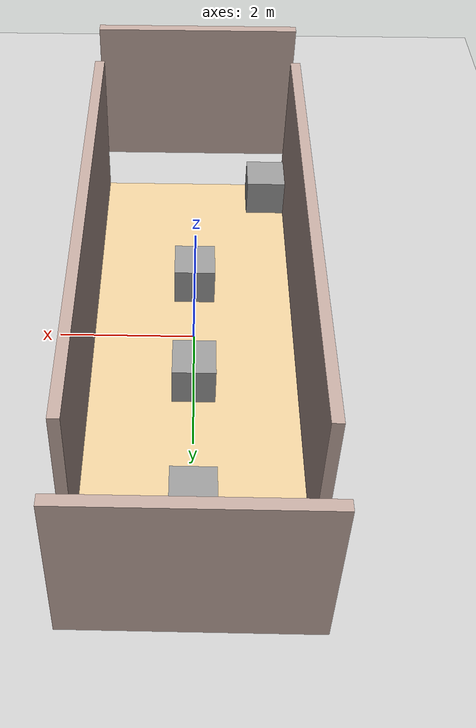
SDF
<sdf version="1.7">
 <world name="default">
  <light name="sun" type="directional">
   <pose>0 0 10 0 -0 0</pose>
   <diffuse>0.8 0.8 0.8 1</diffuse>
   <specular>0.2 0.2 0.2 1</specular>
   <attenuation>
    <range>1000</range>
    <constant>0.9</constant>
    <linear>0.01</linear>
    <quadratic>0.001</quadratic>
   </attenuation>
   <direction>-0.5 0.1 -0.9</direction>
   <spot><inner_angle>0</inner_angle><outer_angle>0</outer_angle><falloff>0</falloff></spot>
  </light>
  <model name="ground_plane">
   <static>1</static>
   <link name="link">
    <collision name="collision">
     <geometry><plane><normal>0 0 1</normal><size>100 100</size></plane></geometry>
     <surface><friction><ode><mu>100</mu><mu2>50</mu2></ode></friction></surface>
    </collision>
    <visual name="visual">
     <cast_shadows>0</cast_shadows>
     <geometry><plane><normal>0 0 1</normal><size>100 100</size></plane></geometry>
     <material>
      <script><uri>file://media/materials/scripts/gazebo.material</uri><name>Gazebo/Grey</name></script>
     </material>
    </visual>
   </link>
  </model>
  <gravity>0 0 -9.8</gravity>
  <magnetic_field>6e-06 2.3e-05 -4.2e-05</magnetic_field>
  <atmosphere type="adiabatic"/>
  <physics type="ode">
   <max_step_size>0.001</max_step_size>
   <real_time_factor>1</real_time_factor>
   <real_time_update_rate>1000</real_time_update_rate>
  </physics>
  <scene><ambient>0.4 0.4 0.4 1</ambient><background>0.7 0.7 0.7 1</background><shadows>1</shadows></scene>
  <audio><device>default</device></audio>
  <spherical_coordinates>
   <surface_model>EARTH_WGS84</surface_model>
   <latitude_deg>0</latitude_deg>
   <longitude_deg>0</longitude_deg>
   <elevation>0</elevation>
   <heading_deg>0</heading_deg>
  </spherical_coordinates>
  <model name="Supermarket_real_walls">
   <link name="Floor_0">
    <collision name="Floor_0_Collision"><geometry><box><size>3.25 7.25 0.1</size></box></geometry></collision>
    <visual name="Floor_0_Visual">
     <geometry><box><size>3.25 7.25 0.1</size></box></geometry>
     <material>
      <script><uri>file://media/materials/scripts/gazebo.material</uri><name>Gazebo/Grey</name></script>
      <ambient>0.921569 0.807843 0.615686 1</ambient>
     </material>
     <meta><layer>0</layer></meta>
    </visual>
   </link>
   <link name="Wall_11">
    <collision name="Wall_11_Collision">
     <geometry><box><size>3.25 0.15 2.5</size></box></geometry>
     <pose>0 0 1.25 0 -0 0</pose>
    </collision>
    <visual name="Wall_11_Visual">
     <pose>0 0 1.25 0 -0 0</pose>
     <geometry><box><size>3.25 0.15 2.5</size></box></geometry>
     <material>
      <script><uri>file://media/materials/scripts/gazebo.material</uri><name>Gazebo/Grey</name></script>
      <ambient>0.760784 0.662745 0.627451 1</ambient>
     </material>
     <meta><layer>0</layer></meta>
    </visual>
    <pose>0 -4.675 0 0 -0 0</pose>
   </link>
   <link name="Wall_12">
    <collision name="Wall_12_Collision">
     <geometry><box><size>7.25 0.15 2.5</size></box></geometry>
     <pose>0 0 1.25 0 -0 0</pose>
    </collision>
    <visual name="Wall_12_Visual">
     <pose>0 0 1.25 0 -0 0</pose>
     <geometry><box><size>7.25 0.15 2.5</size></box></geometry>
     <material>
      <script><uri>file://media/materials/scripts/gazebo.material</uri><name>Gazebo/Grey</name></script>
      <ambient>0.760784 0.662745 0.627451 1</ambient>
     </material>
     <meta><layer>0</layer></meta>
    </visual>
    <pose>1.55 0 0 0 -0 1.5708</pose>
   </link>
   <link name="Wall_18">
    <collision name="Wall_18_Collision">
     <geometry><box><size>7.25 0.15 2.5</size></box></geometry>
     <pose>0 0 1.25 0 -0 0</pose>
    </collision>
    <visual name="Wall_18_Visual">
     <pose>0 0 1.25 0 -0 0</pose>
     <geometry><box><size>7.25 0.15 2.5</size></box></geometry>
     <material>
      <script><uri>file://media/materials/scripts/gazebo.material</uri><name>Gazebo/Grey</name></script>
      <ambient>0.760784 0.662745 0.627451 1</ambient>
     </material>
     <meta><layer>0</layer></meta>
    </visual>
    <pose>-1.55 0 0 0 -0 1.5708</pose>
   </link>
   <link name="Wall_21">
    <collision name="Wall_21_Collision">
     <geometry><box><size>3.23 0.15 2.5</size></box></geometry>
     <pose>0 0 1.25 0 -0 0</pose>
    </collision>
    <visual name="Wall_21_Visual">
     <pose>0 0 1.25 0 -0 0</pose>
     <geometry><box><size>3.23 0.15 2.5</size></box></geometry>
     <material>
      <script><uri>file://media/materials/scripts/gazebo.material</uri><name>Gazebo/Grey</name></script>
      <ambient>0.760784 0.662745 0.627451 1</ambient>
     </material>
     <meta><layer>0</layer></meta>
    </visual>
    <pose>0.01 4.675 0 0 -0 0</pose>
   </link>
   <static>1</static>
  </model>
  <model name="markers_supermarket_real">
   <link name="link">
    <inertial>
     <mass>1</mass>
     <inertia>
      <ixx>0.166667</ixx>
      <ixy>0</ixy>
      <ixz>0</ixz>
      <iyy>0.166667</iyy>
      <iyz>0</iyz>
      <izz>0.166667</izz>
     </inertia>
    </inertial>
    <visual name="visual">
     <geometry><box><size>0.61 0.61 0.61</size></box></geometry>
     <material>
      <script><name>Gazebo/Grey</name><uri>file://media/materials/scripts/gazebo.material</uri></script>
      <shader type="pixel"><normal_map>__default__</normal_map></shader>
      <ambient>0.3 0.3 0.3 1</ambient>
      <diffuse>0.7 0.7 0.7 1</diffuse>
      <specular>0.01 0.01 0.01 1</specular>
      <emissive>0 0 0 1</emissive>
     </material>
    </visual>
    <collision name="collision">
     <geometry><box><size>0.61 0.61 0.61</size></box></geometry>
     <surface>
      <friction>
       <ode><mu>1</mu><mu2>1</mu2><fdir1>0 0 0</fdir1><slip1>0</slip1><slip2>0</slip2></ode>
       <torsional>
        <coefficient>1</coefficient>
        <patch_radius>0</patch_radius>
        <surface_radius>0</surface_radius>
        <use_patch_radius>1</use_patch_radius>
        <ode><slip>0</slip></ode>
       </torsional>
      </friction>
      <bounce><restitution_coefficient>0</restitution_coefficient><threshold>1e+06</threshold></bounce>
      <contact>
       <collide_without_contact>0</collide_without_contact>
       <collide_without_contact_bitmask>1</collide_without_contact_bitmask>
       <collide_bitmask>1</collide_bitmask>
       <ode>
        <soft_cfm>0</soft_cfm>
        <soft_erp>0.2</soft_erp>
        <kp>1e+13</kp>
        <kd>1</kd>
        <max_vel>0.01</max_vel>
        <min_depth>0</min_depth>
       </ode>
       <bullet>
        <split_impulse>1</split_impulse>
        <split_impulse_penetration_threshold>-0.01</split_impulse_penetration_threshold>
        <soft_cfm>0</soft_cfm>
        <soft_erp>0.2</soft_erp>
        <kp>1e+13</kp>
        <kd>1</kd>
       </bullet>
      </contact>
     </surface>
    </collision>
   </link>
   <static>0</static>
   <pose>-4e-06 3.16886 0.354995 -8e-06 -6e-06 -0.002094</pose>
  </model>
  <model name="markers_supermarket_real_0">
   <link name="link">
    <inertial>
     <mass>1</mass>
     <inertia>
      <ixx>0.166667</ixx>
      <ixy>0</ixy>
      <ixz>0</ixz>
      <iyy>0.166667</iyy>
      <iyz>0</iyz>
      <izz>0.166667</izz>
     </inertia>
    </inertial>
    <visual name="visual">
     <geometry><box><size>0.61 0.61 0.61</size></box></geometry>
     <material>
      <script><name>Gazebo/Grey</name><uri>file://media/materials/scripts/gazebo.material</uri></script>
      <shader type="pixel"><normal_map>__default__</normal_map></shader>
      <ambient>0.3 0.3 0.3 1</ambient>
      <diffuse>0.7 0.7 0.7 1</diffuse>
      <specular>0.01 0.01 0.01 1</specular>
      <emissive>0 0 0 1</emissive>
     </material>
    </visual>
    <collision name="collision">
     <geometry><box><size>0.61 0.61 0.61</size></box></geometry>
     <surface>
      <friction>
       <ode><mu>1</mu><mu2>1</mu2><fdir1>0 0 0</fdir1><slip1>0</slip1><slip2>0</slip2></ode>
       <torsional>
        <coefficient>1</coefficient>
        <patch_radius>0</patch_radius>
        <surface_radius>0</surface_radius>
        <use_patch_radius>1</use_patch_radius>
        <ode><slip>0</slip></ode>
       </torsional>
      </friction>
      <bounce><restitution_coefficient>0</restitution_coefficient><threshold>1e+06</threshold></bounce>
      <contact>
       <collide_without_contact>0</collide_without_contact>
       <collide_without_contact_bitmask>1</collide_without_contact_bitmask>
       <collide_bitmask>1</collide_bitmask>
       <ode>
        <soft_cfm>0</soft_cfm>
        <soft_erp>0.2</soft_erp>
        <kp>1e+13</kp>
        <kd>1</kd>
        <max_vel>0.01</max_vel>
        <min_depth>0</min_depth>
       </ode>
       <bullet>
        <split_impulse>1</split_impulse>
        <split_impulse_penetration_threshold>-0.01</split_impulse_penetration_threshold>
        <soft_cfm>0</soft_cfm>
        <soft_erp>0.2</soft_erp>
        <kp>1e+13</kp>
        <kd>1</kd>
       </bullet>
      </contact>
     </surface>
    </collision>
   </link>
   <static>0</static>
   <pose>-1.16996 -3.16978 0.354995 2e-06 1.4e-05 6e-05</pose>
  </model>
  <model name="markers_supermarket_real_2">
   <link name="link">
    <inertial>
     <mass>1</mass>
     <inertia>
      <ixx>0.166667</ixx>
      <ixy>0</ixy>
      <ixz>0</ixz>
      <iyy>0.166667</iyy>
      <iyz>0</iyz>
      <izz>0.166667</izz>
     </inertia>
    </inertial>
    <visual name="visual">
     <geometry><box><size>0.61 0.61 0.61</size></box></geometry>
     <material>
      <script><name>Gazebo/Grey</name><uri>file://media/materials/scripts/gazebo.material</uri></script>
      <shader type="pixel"><normal_map>__default__</normal_map></shader>
      <ambient>0.3 0.3 0.3 1</ambient>
      <diffuse>0.7 0.7 0.7 1</diffuse>
      <specular>0.01 0.01 0.01 1</specular>
      <emissive>0 0 0 1</emissive>
     </material>
    </visual>
    <collision name="collision">
     <geometry><box><size>0.61 0.61 0.61</size></box></geometry>
     <surface>
      <friction>
       <ode><mu>1</mu><mu2>1</mu2><fdir1>0 0 0</fdir1><slip1>0</slip1><slip2>0</slip2></ode>
       <torsional>
        <coefficient>1</coefficient>
        <patch_radius>0</patch_radius>
        <surface_radius>0</surface_radius>
        <use_patch_radius>1</use_patch_radius>
        <ode><slip>0</slip></ode>
       </torsional>
      </friction>
      <bounce><restitution_coefficient>0</restitution_coefficient><threshold>1e+06</threshold></bounce>
      <contact>
       <collide_without_contact>0</collide_without_contact>
       <collide_without_contact_bitmask>1</collide_without_contact_bitmask>
       <collide_bitmask>1</collide_bitmask>
       <ode>
        <soft_cfm>0</soft_cfm>
        <soft_erp>0.2</soft_erp>
        <kp>1e+13</kp>
        <kd>1</kd>
        <max_vel>0.01</max_vel>
        <min_depth>0</min_depth>
       </ode>
       <bullet>
        <split_impulse>1</split_impulse>
        <split_impulse_penetration_threshold>-0.01</split_impulse_penetration_threshold>
        <soft_cfm>0</soft_cfm>
        <soft_erp>0.2</soft_erp>
        <kp>1e+13</kp>
        <kd>1</kd>
       </bullet>
      </contact>
     </surface>
    </collision>
   </link>
   <static>0</static>
   <pose>-0 -1 0.354995 -8e-06 -8e-06 0.005958</pose>
  </model>
  <model name="markers_supermarket_real_1">
   <link name="link">
    <inertial>
     <mass>1</mass>
     <inertia>
      <ixx>0.166667</ixx>
      <ixy>0</ixy>
      <ixz>0</ixz>
      <iyy>0.166667</iyy>
      <iyz>0</iyz>
      <izz>0.166667</izz>
     </inertia>
    </inertial>
    <visual name="visual">
     <geometry><box><size>0.61 0.61 0.61</size></box></geometry>
     <material>
      <script><name>Gazebo/Grey</name><uri>file://media/materials/scripts/gazebo.material</uri></script>
      <shader type="pixel"><normal_map>__default__</normal_map></shader>
      <ambient>0.3 0.3 0.3 1</ambient>
      <diffuse>0.7 0.7 0.7 1</diffuse>
      <specular>0.01 0.01 0.01 1</specular>
      <emissive>0 0 0 1</emissive>
     </material>
    </visual>
    <collision name="collision">
     <geometry><box><size>0.61 0.61 0.61</size></box></geometry>
     <surface>
      <friction>
       <ode><mu>1</mu><mu2>1</mu2><fdir1>0 0 0</fdir1><slip1>0</slip1><slip2>0</slip2></ode>
       <torsional>
        <coefficient>1</coefficient>
        <patch_radius>0</patch_radius>
        <surface_radius>0</surface_radius>
        <use_patch_radius>1</use_patch_radius>
        <ode><slip>0</slip></ode>
       </torsional>
      </friction>
      <bounce><restitution_coefficient>0</restitution_coefficient><threshold>1e+06</threshold></bounce>
      <contact>
       <collide_without_contact>0</collide_without_contact>
       <collide_without_contact_bitmask>1</collide_without_contact_bitmask>
       <collide_bitmask>1</collide_bitmask>
       <ode>
        <soft_cfm>0</soft_cfm>
        <soft_erp>0.2</soft_erp>
        <kp>1e+13</kp>
        <kd>1</kd>
        <max_vel>0.01</max_vel>
        <min_depth>0</min_depth>
       </ode>
       <bullet>
        <split_impulse>1</split_impulse>
        <split_impulse_penetration_threshold>-0.01</split_impulse_penetration_threshold>
        <soft_cfm>0</soft_cfm>
        <soft_erp>0.2</soft_erp>
        <kp>1e+13</kp>
        <kd>1</kd>
       </bullet>
      </contact>
     </surface>
    </collision>
   </link>
   <static>0</static>
   <pose>-5e-06 1 0.354994 -4e-06 -8e-06 0</pose>
  </model>
 </world>
</sdf>
